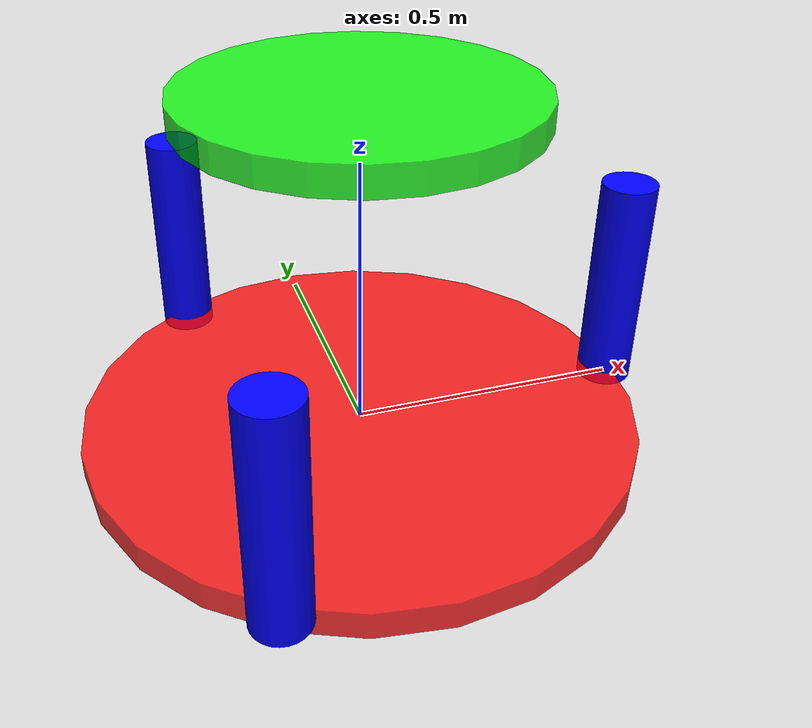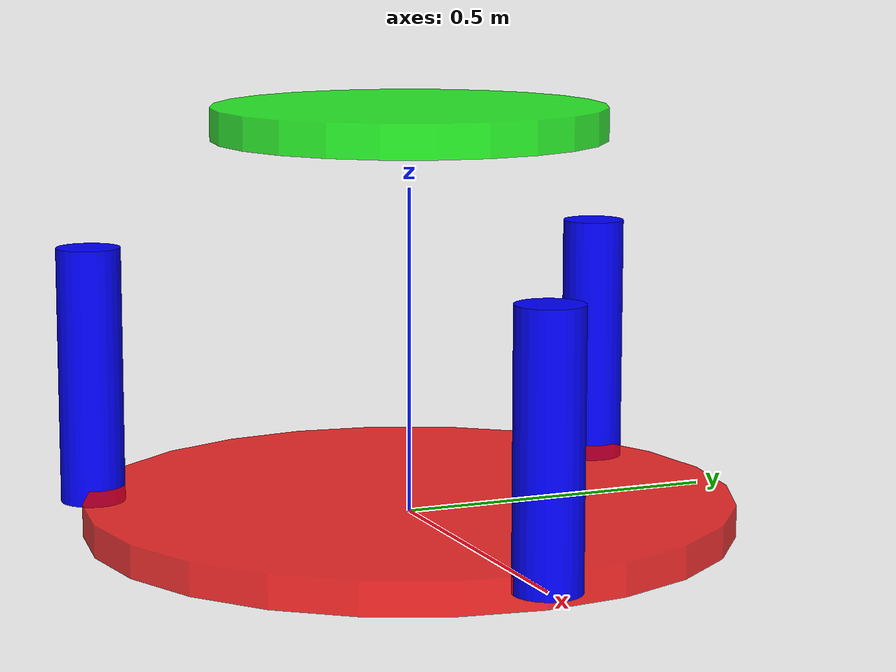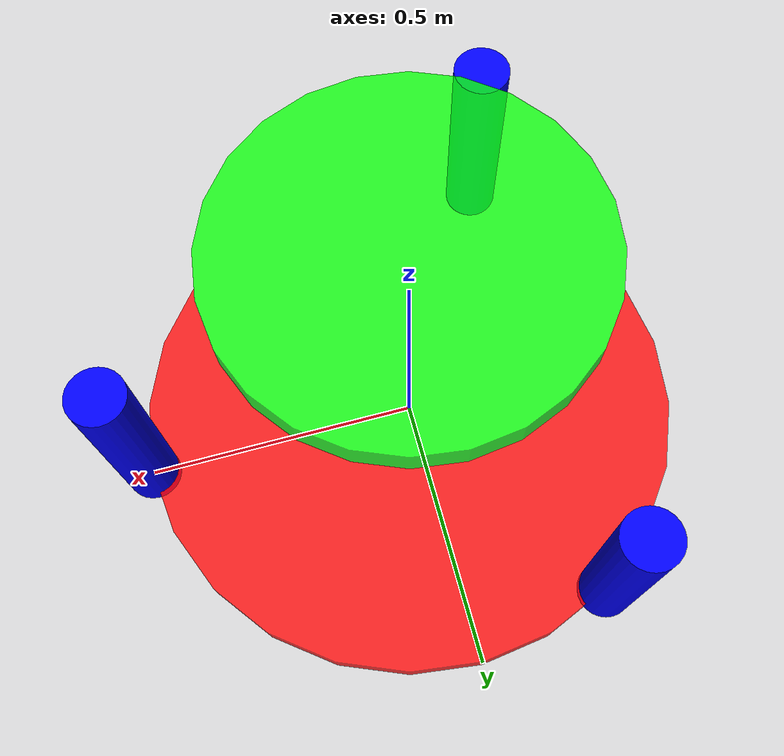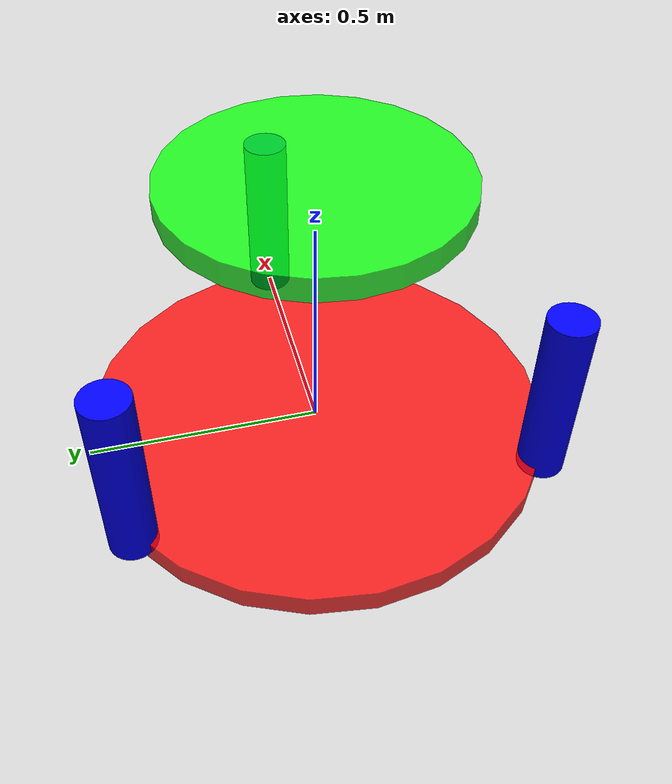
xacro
<?xml version="1.0"?>
<robot name="delta_robot_ros2" xmlns:xacro="http://ros.org/wiki/xacro">

  <!-- Include common macros and motor definition -->
  <xacro:include filename="$(find delta_robot_ros2)/urdf/common_macro.xacro"/>
  <xacro:include filename="$(find delta_robot_ros2)/urdf/base.xacro"/>
  <xacro:include filename="$(find delta_robot_ros2)/urdf/leg.xacro"/>
  <xacro:include filename="$(find delta_robot_ros2)/urdf/platform.xacro"/>
  <xacro:include filename="$(find delta_robot_ros2)/urdf/robot_control.xacro"/>

  <!-- Параметры для основания и платформы -->
  <xacro:property name="base_radius" value="0.5"/>
  <xacro:property name="base_height" value="0.05"/>
  <xacro:property name="base_material_rgba" value="1 0 0 0.8"/>

  <xacro:property name="platform_radius" value="0.3"/>
  <xacro:property name="platform_height" value="0.05"/>
  <xacro:property name="platform_material_rgba" value="0 1 0 0.8"/>

  <xacro:property name="platform_initial_height" value="0.6"/>

  <!-- Блок расчёта расположения и ориентации ног дельтаробота -->
  <xacro:property name="base_offset_z" value="0"/>
  <xacro:property name="angle_deg_1" value="0"/>
  <xacro:property name="angle_deg_2" value="120"/>
  <xacro:property name="angle_deg_3" value="240"/>

  <xacro:property name="leg_1_origin_xyz" value="${base_radius * cos(angle_deg_1 * pi / 180)} ${base_radius * sin(angle_deg_1 * pi / 180)} ${base_offset_z}"/>
  <xacro:property name="leg_1_origin_rpy" value="0 0 ${angle_deg_1 * pi / 180}"/>

  <xacro:property name="leg_2_origin_xyz" value="${base_radius * cos(angle_deg_2 * pi / 180)} ${base_radius * sin(angle_deg_2 * pi / 180)} ${base_offset_z}"/>
  <xacro:property name="leg_2_origin_rpy" value="0 0 ${angle_deg_2 * pi / 180}"/>

  <xacro:property name="leg_3_origin_xyz" value="${base_radius * cos(angle_deg_3 * pi / 180)} ${base_radius * sin(angle_deg_3 * pi / 180)} ${base_offset_z}"/>
  <xacro:property name="leg_3_origin_rpy" value="0 0 ${angle_deg_3 * pi / 180}"/>

  <!-- Основание робота -->
  <xacro:base id="base" base_radius="${base_radius}" base_height="${base_height}" base_material_rgba="${base_material_rgba}"/>

  <!-- Манипулируемая платформа -->

  <xacro:platform id="platform" platform_radius="${platform_radius}" platform_height="${platform_height}" platform_material_rgba="${platform_material_rgba}" parent="base_link" origin_xyz="0 0 ${platform_initial_height}" origin_rpy="0 0 0"/>

  <!-- Ноги робота -->
  <xacro:leg prefix="leg_1" origin_xyz="${leg_1_origin_xyz}" origin_rpy="${leg_1_origin_rpy}"/>
  <xacro:leg prefix="leg_2" origin_xyz="${leg_2_origin_xyz}" origin_rpy="${leg_2_origin_rpy}"/>
  <xacro:leg prefix="leg_3" origin_xyz="${leg_3_origin_xyz}" origin_rpy="${leg_3_origin_rpy}"/>

  <xacro:daleta_robot_control/>

</robot>

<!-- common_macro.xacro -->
<robot name="dron_macro" xmlns:xacro="http://www.ros.org/wiki/xacro">

<!-- Macro for base inertial model -->
<xacro:macro name= "inertial_matrix" params="mass">
  <inertial>
    <mass value="${mass}"/> <!-- Base mass -->
    <!-- Set identity matrix for inertia moments -->
    <inertia
        ixx="1.0" ixy="0.0"
        iyy="1.0" iyz="0.0"
        izz="1.0" ixz="0.0"/>
   </inertial>
 </xacro:macro>

<!-- Macro for sphere inertial model -->
<xacro:macro name="inertial_sphere" params="mass radius">
    <inertial>
        <mass value="${mass}" />
        <inertia ixx="${(2/5) * mass * (radius*radius)}" ixy="0.0" ixz="0.0"
                iyy="${(2/5) * mass * (radius*radius)}" iyz="0.0"
                izz="${(2/5) * mass * (radius*radius)}" />
    </inertial>
</xacro:macro>

<!-- Macro for box inertial model -->
<xacro:macro name="inertial_box" params="mass x y z">
    <inertial>
        <mass value="${mass}" />
        <inertia ixx="${(1/12) * mass * (y*y+z*z)}" ixy="0.0" ixz="0.0"
                iyy="${(1/12) * mass * (x*x+z*z)}" iyz="0.0"
                izz="${(1/12) * mass * (x*x+y*y)}" />
    </inertial>
</xacro:macro>

<!-- Macro for cylinder inertial model -->
<xacro:macro name="inertial_cylinder" params="mass length radius">
    <inertial>
        <mass value="${mass}" />
        <inertia ixx="${(1/12) * mass * (3*radius*radius + length*length)}" ixy="0.0" ixz="0.0"
                iyy="${(1/12) * mass * (3*radius*radius + length*length)}" iyz="0.0"
                izz="${(1/2) * mass * (radius*radius)}" />
    </inertial>
</xacro:macro>

</robot>

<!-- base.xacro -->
<robot xmlns:xacro="http://www.ros.org/wiki/xacro">

  <xacro:include filename="$(find delta_robot_ros2)/urdf/common_macro.xacro"/>

  <xacro:macro name="base" params="id base_radius base_height base_material_rgba">

    <link name="GSC">
      <xacro:inertial_cylinder mass="0.1" length="${1}" radius="${1}"/>
    </link>

    <!-- Чтобы перевернуть систему исменить rpy (${pi} 0 0) -->
    <joint name="GSC_to_base" type="fixed">
      <parent link="GSC"/>
      <child link="${id}_link"/>
      <origin xyz="0 0 0" rpy="${0} 0 0"/>
    </joint>

    <link name="${id}_link">
      <visual>
        <geometry>
          <cylinder length="${base_height}" radius="${base_radius}"/>
        </geometry>
        <material name="${id}_material">
          <color rgba="${base_material_rgba}"/>
        </material>
      </visual>
      <xacro:inertial_cylinder mass="1" length="${base_height}" radius="${base_radius}"/>
    </link>
  </xacro:macro>

</robot>

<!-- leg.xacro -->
<robot xmlns:xacro="http://www.ros.org/wiki/xacro">

  <xacro:include filename="$(find delta_robot_ros2)/urdf/common_macro.xacro"/>

  <!-- Simple transmission -->
  <xacro:macro name="simple_transmission" params="joint_name">
      <transmission name="${joint_name}_transmission">
          <type>transmission_interface/SimpleTransmission</type>
          <joint name="${joint_name}">
            <hardwareInterface>hardware_interface/PositionJointInterface</hardwareInterface>
          </joint>
          <actuator name="${joint_name}_actuator">
            <hardwareInterface>hardware_interface/PositionJointInterface</hardwareInterface>
            <mechanicalReduction>1</mechanicalReduction>
          </actuator>
        </transmission>
  </xacro:macro>

  <xacro:macro name="leg" params="prefix origin_xyz origin_rpy">

    <!-- Параметры для шарнира, соединяющего основание и первое звено -->
    <joint name="${prefix}_joint_1" type="revolute">
      <origin xyz="${origin_xyz}" rpy="${origin_rpy}" />
      <parent link="base_link"/>
      <child link="${prefix}_link_1"/>
      <axis xyz="0 1 0"/>
      <limit lower="-${pi / 3}" upper="${pi / 3}" effort="1000" velocity="3"/>
    </joint>

    <xacro:simple_transmission joint_name="${prefix}_joint_1"/>

    <xacro:property name="leg_length" value="0.4"/>

    <!-- Первое звено -->
    <link name="${prefix}_link_1">
      <visual>
        <origin xyz="0 0 ${leg_length / 2}"/>
        <geometry>
          <cylinder length="${leg_length}" radius="0.05"/>
        </geometry>
         <material name="material_link_1">
          <color rgba="0 0 1 1"/>
        </material>
      </visual>
      <xacro:inertial_cylinder mass="1" length="${0.4}" radius="${0.05}"/>
    </link>

    <!-- Сферический шарнир между первым и вторым звеном -->

    <!-- Второе звено -->

    <!-- Сферический шарнир, соединяющий второе звено с манипулируемой платформой -->

  </xacro:macro>

</robot>

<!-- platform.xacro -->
<robot xmlns:xacro="http://ros.org/wiki/xacro">

  <xacro:include filename="$(find delta_robot_ros2)/urdf/common_macro.xacro"/>

  <xacro:macro name="platform" params="id platform_radius platform_height platform_material_rgba parent origin_xyz origin_rpy">

    <link name="${id}">
      <visual>
        <geometry>
          <cylinder radius="${platform_radius}" length="${platform_height}"/>
        </geometry>
        <material name="${id}_material">
          <color rgba="${platform_material_rgba}"/>
        </material>
      </visual>
      <xacro:inertial_cylinder mass="1" length="${platform_height}" radius="${platform_radius}"/>
    </link>

    <!-- Шарнир соединяющий платформу с базой (возможно условно, если требуется для структуры URDF) -->
    <joint name="${id}_base_joint" type="fixed">
      <origin xyz="${origin_xyz}" rpy="${origin_rpy}"/>
      <parent link="${parent}"/>
      <child link="${id}"/>
    </joint>
  </xacro:macro>

</robot>
